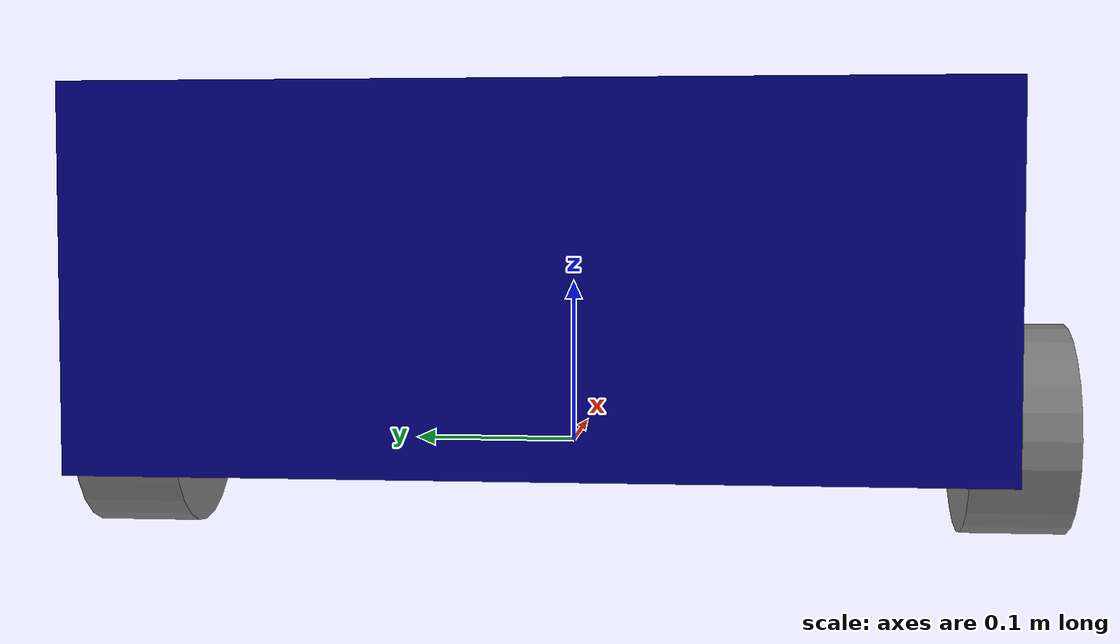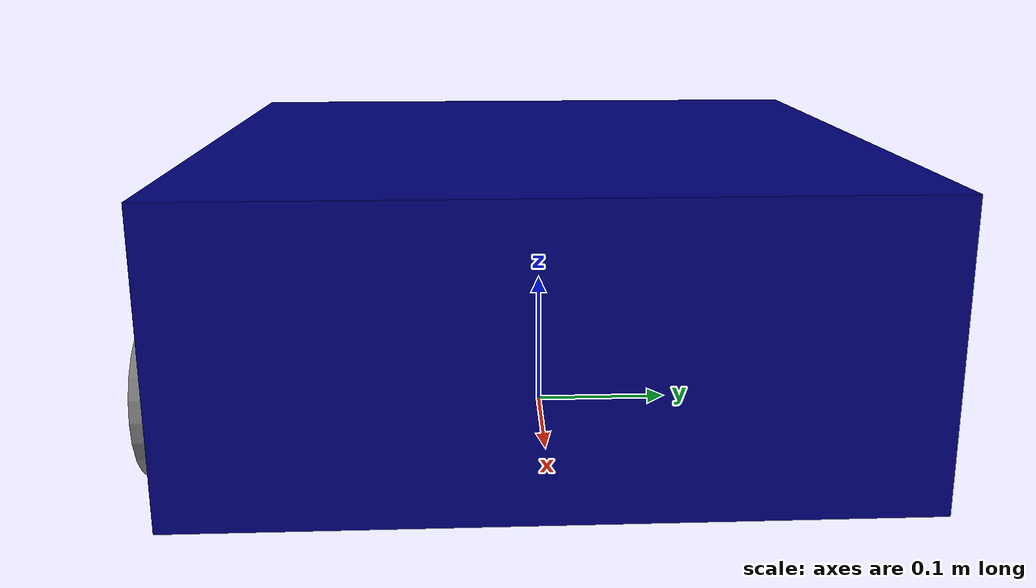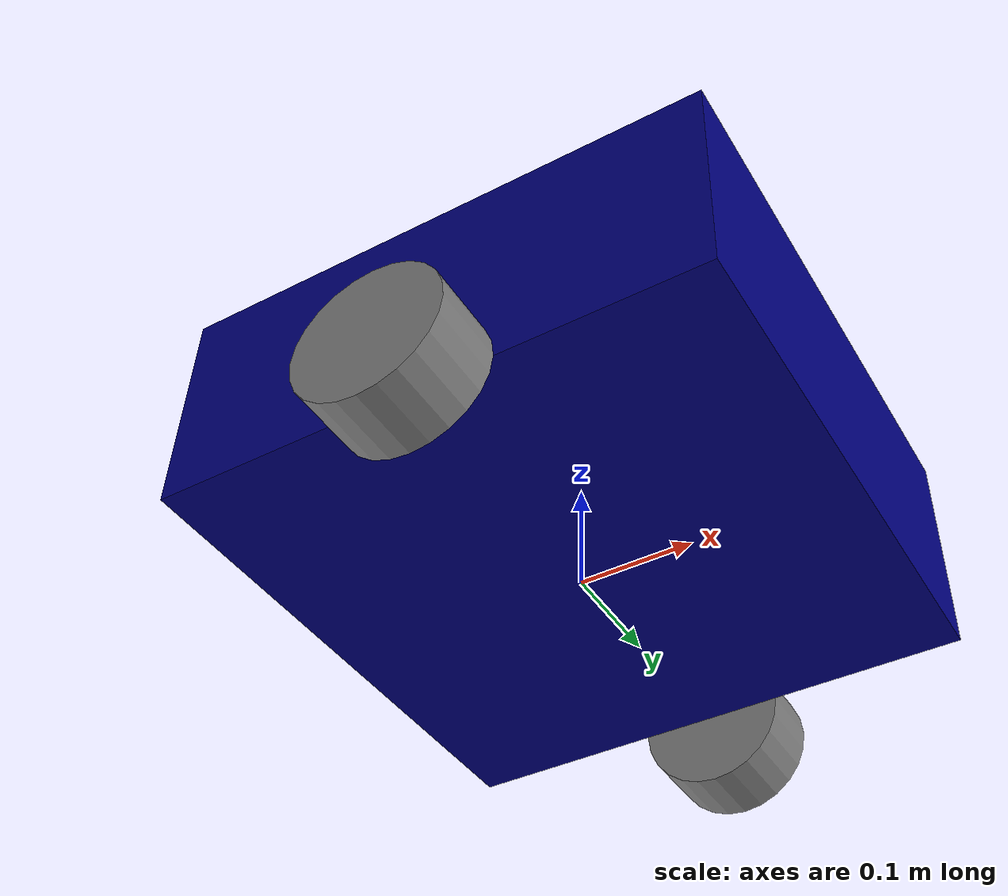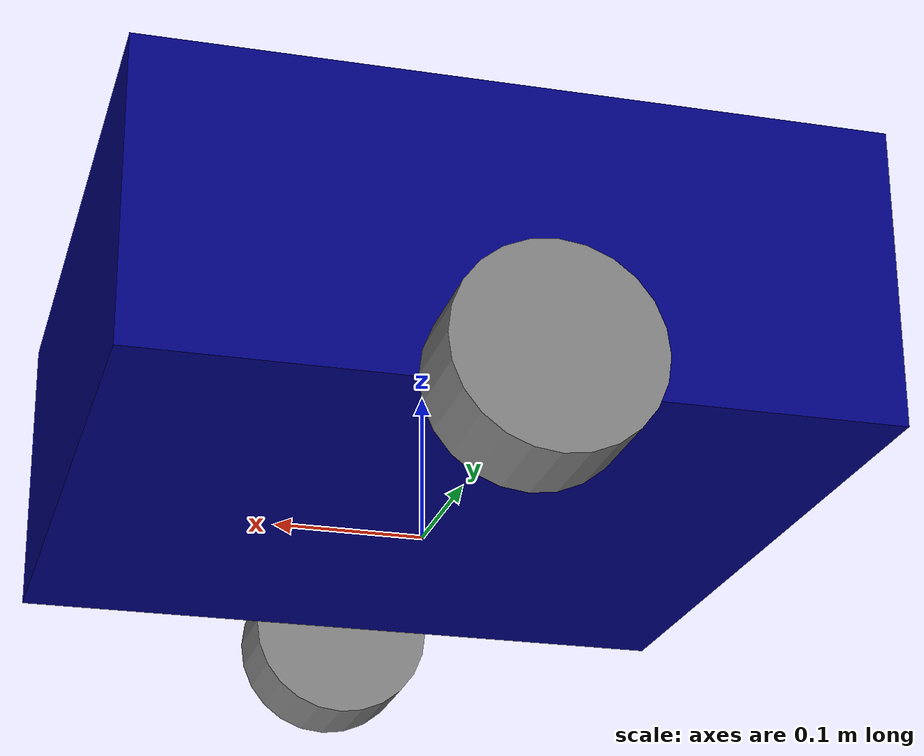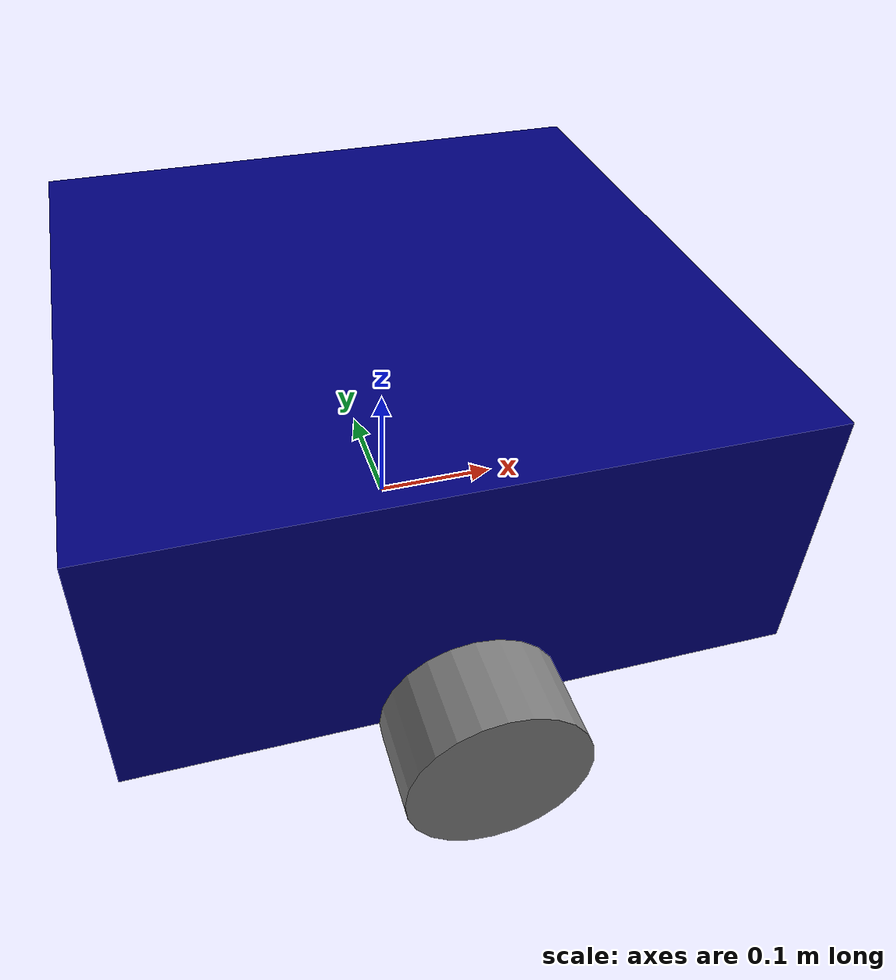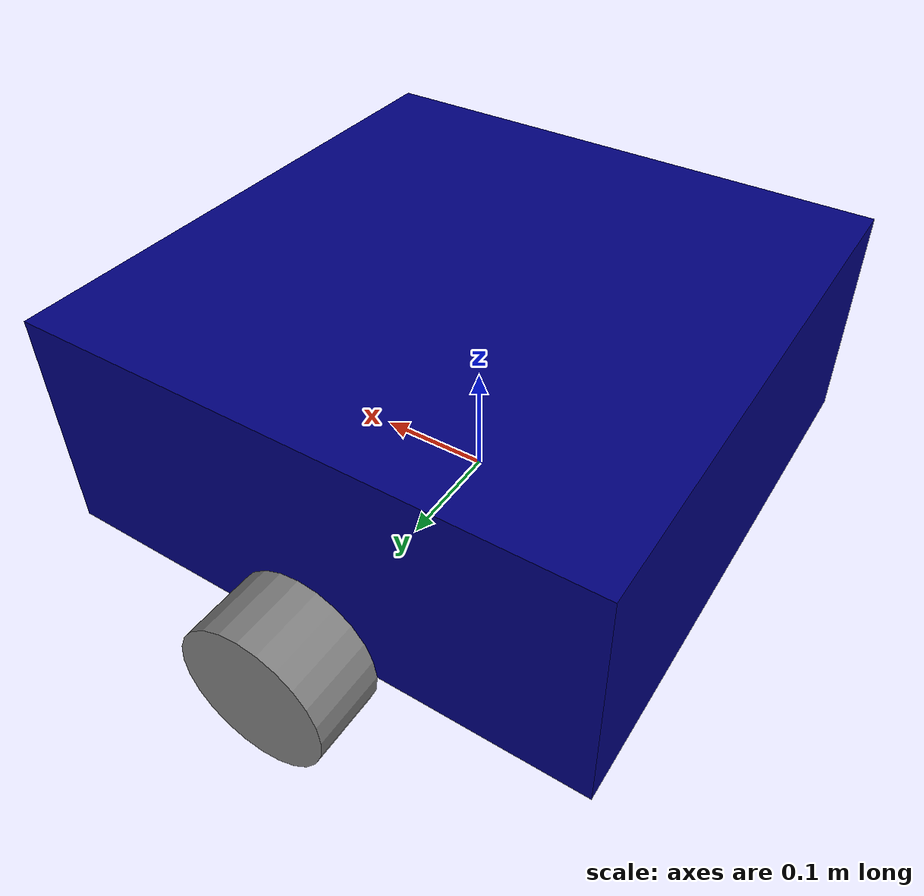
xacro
<?xml version="1.0"?>
<!-- The first thing we need to do is a robot TYPE -->
<robot name="my_robot" xmlns:xacro="http://www.ros.org/wiki/xacro"> <!-- here is the starting point -->
    <!-- Always add this when use xacro -->
    <!-- Here we can add LINKS, JOINTS, and other elements to define the robot -->

    <xacro:include filename="common_properties.xacro"/>
    <xacro:include filename="food_del_base.xacro"/>

</robot>

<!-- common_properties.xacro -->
<robot xmlns:xacro="http://www.ros.org/wiki/xacro">

    <!-- Defining the colors -->
    <material name="blue">
        <color rgba="0 0 0.5 1"/>
    </material>

    <material name="red">
        <color rgba="1 0 0 1"/>
    </material>

    <material name="gray">
        <color rgba="0.5 0.5 0.5 1"/>
    </material>

    <material name="orange">
        <color rgba="1 0.5 0 1"/>
    </material>

    <material name="yellow">
        <color rgba="1 1 0 1"/>
    </material>

    <xacro:macro name="box_inertia" params="m l w h xyz rpy">
        <inertial>
            <origin xyz="${xyz}" rpy="${rpy}"/>
            <mass value="${m}"/>
            <inertia ixx="${(1/12.0) * m * (h*h + l*l)}" ixy="0" ixz="0"
                     iyy="${(1/12.0) * m * (w*w + l*l)}" iyz="0"
                     izz="${(1/12.0) * m * (w*w + h*h)}"/>
        </inertial>
    </xacro:macro>

    <xacro:macro name="cylinder_inertia" params="m r h xyz rpy">
        <inertial>
            <origin xyz="${xyz}" rpy="${rpy}"/>
            <mass value="${m}"/>
            <inertia ixx="${(1/12.0) * m * (3*r*r + h*h)}" ixy="0" ixz="0"
                     iyy="${(1/12.0) * m * (3*r*r + h*h)}" iyz="0"
                     izz="${0.5 * m * r*r}"/>
        </inertial>
    </xacro:macro>

    <xacro:macro name="sphere_inertia" params="m r xyz rpy">
        <inertial>
            <origin xyz="${xyz}" rpy="${rpy}"/>
            <mass value="${m}"/>
            <inertia ixx="${(2/5.0) * m * r*r}" ixy="0" ixz="0"
                     iyy="${(2/5.0) * m * r*r}" iyz="0"
                     izz="${(2/5.0) * m * r*r}"/>
        </inertial>
    </xacro:macro>

</robot>

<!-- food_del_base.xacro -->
<robot xmlns:xacro="http://www.ros.org/wiki/xacro">

    <!-- Defining some variables -->
    <xacro:property name="base_length" value="0.48"/>
    <xacro:property name="base_width" value="0.48"/>
    <xacro:property name="base_height" value="0.2"/>
    <xacro:property name="wheel_radius" value="0.065"/>
    <xacro:property name="wheel_width" value="0.064"/>

    <!-- ============= Defining the links of the robot ============== -->

    <link name="base_footprint" />

    <link name="base_link">
        <visual>
            <geometry>
                <box size="${base_length} ${base_width} ${base_height}" />
            </geometry>
            <origin xyz="0 0 ${base_height / 2.0}" rpy="0 0 0"/> <!-- origin of the link -->
            <material name="blue"/>
        </visual>
        <collision>
            <geometry>
                <box size="${base_length} ${base_width} ${base_height}" />
            </geometry>
            <origin xyz="0 0 ${base_height / 2.0}" rpy="0 0 0"/>
        </collision>
        <xacro:box_inertia m="5.0" l="${base_length}" w="${base_width}" h="${base_height}"
                           xyz="0 0 ${base_height / 2.0}" rpy="0 0 0"/>
    </link>

    <xacro:macro name="wheel_link" params="prefix">
        <link name="${prefix}_wheel_link">
            <visual>
                <geometry>
                    <cylinder radius="${wheel_radius}" length="${wheel_width}" />
                </geometry>
                <origin xyz="0 0 0" rpy="${pi / 2.0} 0 0"/> <!-- pi is the constant already exist in xacro -->
                <material name="gray"/>
            </visual>
            <collision>
                <geometry>
                    <cylinder radius="${wheel_radius}" length="${wheel_width}" />
                </geometry>
                <origin xyz="0 0 0" rpy="${pi / 2.0} 0 0"/>
            </collision>
            <xacro:cylinder_inertia m="1.0" r="${wheel_radius}" h="${wheel_width}"
                                    xyz="0 0 0" rpy="${pi / 2.0} 0 0"/>
        </link>
    </xacro:macro>

    <xacro:wheel_link prefix="right"/>
    <xacro:wheel_link prefix="left"/>

    <!-- ============= Defining the joints of the robot ============== -->

    <joint name="base_joint" type="fixed">
        <parent link="base_footprint"/>
        <child link="base_link"/>
        <origin xyz="0 0 0.01" rpy="0 0 0"/> <!-- origin of base_footprint_link -->
    </joint>

    <joint name="base_left_wheel_joint" type="continuous">
        <parent link="base_link"/>
        <child link="left_wheel_link"/>
        <origin xyz="0 ${-base_width / 2.0 - wheel_width / 2.0} 0" rpy="0 0 0"/> <!-- origin of the joint -->
        <axis xyz="0 1 0"/> <!-- axis of rotation -->
    </joint>

    <joint name="base_right_wheel_joint" type="continuous">
        <parent link="base_link"/>
        <child link="right_wheel_link"/>
        <origin xyz="0 ${base_width / 2.0 + wheel_width / 2.0} 0" rpy="0 0 0"/> <!-- origin of the joint -->
        <axis xyz="0 1 0"/> <!-- axis of rotation -->
    </joint>

</robot>
